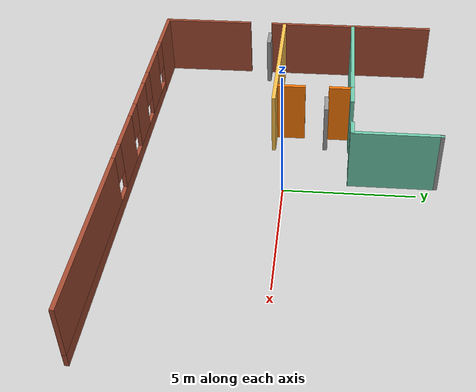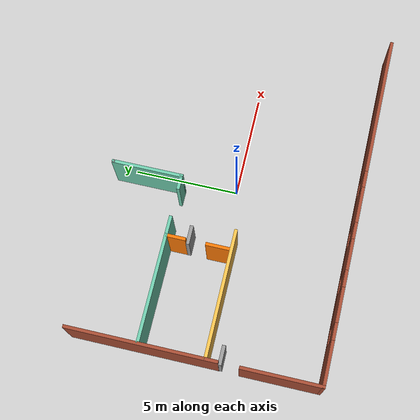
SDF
<sdf version="1.6">
 <model name="Office_Udacity">
  <link name="Door_0">
   <pose>-8.07861 -1.17997 0 0 -0 0</pose>
   <visual name="Door_0_Visual">
    <pose>0 0 1 0 -0 0</pose>
    <geometry><box><size>0.9 0.17 2</size></box></geometry>
    <material>
     <script><uri>file://media/materials/scripts/gazebo.material</uri><name>Gazebo/Grey</name></script>
     <shader type="pixel"/>
    </material>
   </visual>
   <collision name="Door_0_Collision">
    <pose>0 0 1 0 -0 0</pose>
    <geometry><box><size>0.9 0.17 2</size></box></geometry>
    <surface>
     <friction>
      <ode><mu>1</mu><mu2>1</mu2><fdir1>0 0 0</fdir1><slip1>0</slip1><slip2>0</slip2></ode>
      <torsional>
       <coefficient>1</coefficient>
       <patch_radius>0</patch_radius>
       <surface_radius>0</surface_radius>
       <use_patch_radius>1</use_patch_radius>
       <ode><slip>0</slip></ode>
      </torsional>
     </friction>
     <bounce><restitution_coefficient>0</restitution_coefficient><threshold>1e+06</threshold></bounce>
     <contact>
      <collide_without_contact>0</collide_without_contact>
      <collide_without_contact_bitmask>1</collide_without_contact_bitmask>
      <collide_bitmask>1</collide_bitmask>
      <ode>
       <soft_cfm>0</soft_cfm>
       <soft_erp>0.2</soft_erp>
       <kp>1e+13</kp>
       <kd>1</kd>
       <max_vel>0.01</max_vel>
       <min_depth>0</min_depth>
      </ode>
      <bullet>
       <split_impulse>1</split_impulse>
       <split_impulse_penetration_threshold>-0.01</split_impulse_penetration_threshold>
       <soft_cfm>0</soft_cfm>
       <soft_erp>0.2</soft_erp>
       <kp>1e+13</kp>
       <kd>1</kd>
      </bullet>
     </contact>
    </surface>
   </collision>
  </link>
  <link name="Door_1">
   <pose>-3.06619 1.513 0 0 -0 0.01009</pose>
   <visual name="Door_1_Visual">
    <pose>0 0 1 0 -0 0</pose>
    <geometry><box><size>0.9 0.17 2</size></box></geometry>
    <material>
     <script><uri>file://media/materials/scripts/gazebo.material</uri><name>Gazebo/Grey</name></script>
     <shader type="pixel"/>
    </material>
   </visual>
   <collision name="Door_1_Collision">
    <pose>0 0 1 0 -0 0</pose>
    <geometry><box><size>0.9 0.17 2</size></box></geometry>
    <surface>
     <friction>
      <ode><mu>1</mu><mu2>1</mu2><fdir1>0 0 0</fdir1><slip1>0</slip1><slip2>0</slip2></ode>
      <torsional>
       <coefficient>1</coefficient>
       <patch_radius>0</patch_radius>
       <surface_radius>0</surface_radius>
       <use_patch_radius>1</use_patch_radius>
       <ode><slip>0</slip></ode>
      </torsional>
     </friction>
     <bounce><restitution_coefficient>0</restitution_coefficient><threshold>1e+06</threshold></bounce>
     <contact>
      <collide_without_contact>0</collide_without_contact>
      <collide_without_contact_bitmask>1</collide_without_contact_bitmask>
      <collide_bitmask>1</collide_bitmask>
      <ode>
       <soft_cfm>0</soft_cfm>
       <soft_erp>0.2</soft_erp>
       <kp>1e+13</kp>
       <kd>1</kd>
       <max_vel>0.01</max_vel>
       <min_depth>0</min_depth>
      </ode>
      <bullet>
       <split_impulse>1</split_impulse>
       <split_impulse_penetration_threshold>-0.01</split_impulse_penetration_threshold>
       <soft_cfm>0</soft_cfm>
       <soft_erp>0.2</soft_erp>
       <kp>1e+13</kp>
       <kd>1</kd>
      </bullet>
     </contact>
    </surface>
   </collision>
  </link>
  <link name="Wall_23">
   <pose>-5.4726 -0.539 0 0 -0 0</pose>
   <visual name="Wall_23_Visual">
    <pose>0 0 1.25 0 -0 0</pose>
    <geometry><box><size>6 0.15 2.5</size></box></geometry>
    <material>
     <script><uri>file://media/materials/scripts/gazebo.material</uri><name>Gazebo/Grey</name></script>
     <ambient>1 0.764706 0.305882 1</ambient>
     <shader type="pixel"/>
    </material>
    <meta><layer>0</layer></meta>
   </visual>
   <collision name="Wall_23_Collision">
    <pose>0 0 1.25 0 -0 0</pose>
    <geometry><box><size>6 0.15 2.5</size></box></geometry>
    <surface>
     <friction>
      <ode><mu>1</mu><mu2>1</mu2><fdir1>0 0 0</fdir1><slip1>0</slip1><slip2>0</slip2></ode>
      <torsional>
       <coefficient>1</coefficient>
       <patch_radius>0</patch_radius>
       <surface_radius>0</surface_radius>
       <use_patch_radius>1</use_patch_radius>
       <ode><slip>0</slip></ode>
      </torsional>
     </friction>
     <bounce><restitution_coefficient>0</restitution_coefficient><threshold>1e+06</threshold></bounce>
     <contact>
      <collide_without_contact>0</collide_without_contact>
      <collide_without_contact_bitmask>1</collide_without_contact_bitmask>
      <collide_bitmask>1</collide_bitmask>
      <ode>
       <soft_cfm>0</soft_cfm>
       <soft_erp>0.2</soft_erp>
       <kp>1e+13</kp>
       <kd>1</kd>
       <max_vel>0.01</max_vel>
       <min_depth>0</min_depth>
      </ode>
      <bullet>
       <split_impulse>1</split_impulse>
       <split_impulse_penetration_threshold>-0.01</split_impulse_penetration_threshold>
       <soft_cfm>0</soft_cfm>
       <soft_erp>0.2</soft_erp>
       <kp>1e+13</kp>
       <kd>1</kd>
      </bullet>
     </contact>
    </surface>
   </collision>
  </link>
  <link name="Wall_25">
   <pose>-3.43548 0.030226 0 0 -0 1.5708</pose>
   <visual name="Wall_25_Visual">
    <pose>0 0 1.25 0 -0 0</pose>
    <geometry><box><size>1.25 0.15 2.5</size></box></geometry>
    <material>
     <script><uri>file://media/materials/scripts/gazebo.material</uri><name>Gazebo/Grey</name></script>
     <ambient>0.996078 0.47451 0.0196078 1</ambient>
     <shader type="pixel"/>
    </material>
    <meta><layer>0</layer></meta>
   </visual>
   <collision name="Wall_25_Collision">
    <pose>0 0 1.25 0 -0 0</pose>
    <geometry><box><size>1.25 0.15 2.5</size></box></geometry>
    <surface>
     <friction>
      <ode><mu>1</mu><mu2>1</mu2><fdir1>0 0 0</fdir1><slip1>0</slip1><slip2>0</slip2></ode>
      <torsional>
       <coefficient>1</coefficient>
       <patch_radius>0</patch_radius>
       <surface_radius>0</surface_radius>
       <use_patch_radius>1</use_patch_radius>
       <ode><slip>0</slip></ode>
      </torsional>
     </friction>
     <bounce><restitution_coefficient>0</restitution_coefficient><threshold>1e+06</threshold></bounce>
     <contact>
      <collide_without_contact>0</collide_without_contact>
      <collide_without_contact_bitmask>1</collide_without_contact_bitmask>
      <collide_bitmask>1</collide_bitmask>
      <ode>
       <soft_cfm>0</soft_cfm>
       <soft_erp>0.2</soft_erp>
       <kp>1e+13</kp>
       <kd>1</kd>
       <max_vel>0.01</max_vel>
       <min_depth>0</min_depth>
      </ode>
      <bullet>
       <split_impulse>1</split_impulse>
       <split_impulse_penetration_threshold>-0.01</split_impulse_penetration_threshold>
       <soft_cfm>0</soft_cfm>
       <soft_erp>0.2</soft_erp>
       <kp>1e+13</kp>
       <kd>1</kd>
      </bullet>
     </contact>
    </surface>
   </collision>
  </link>
  <link name="Wall_27">
   <pose>-3.43554 2.07794 0 0 -0 1.57094</pose>
   <visual name="Wall_27_Visual">
    <pose>0 0 1.25 0 -0 0</pose>
    <geometry><box><size>1 0.15 2.5</size></box></geometry>
    <material>
     <script><uri>file://media/materials/scripts/gazebo.material</uri><name>Gazebo/Grey</name></script>
     <ambient>0.996078 0.47451 0.0196078 1</ambient>
     <shader type="pixel"/>
    </material>
    <meta><layer>0</layer></meta>
   </visual>
   <collision name="Wall_27_Collision">
    <pose>0 0 1.25 0 -0 0</pose>
    <geometry><box><size>1 0.15 2.5</size></box></geometry>
    <surface>
     <friction>
      <ode><mu>1</mu><mu2>1</mu2><fdir1>0 0 0</fdir1><slip1>0</slip1><slip2>0</slip2></ode>
      <torsional>
       <coefficient>1</coefficient>
       <patch_radius>0</patch_radius>
       <surface_radius>0</surface_radius>
       <use_patch_radius>1</use_patch_radius>
       <ode><slip>0</slip></ode>
      </torsional>
     </friction>
     <bounce><restitution_coefficient>0</restitution_coefficient><threshold>1e+06</threshold></bounce>
     <contact>
      <collide_without_contact>0</collide_without_contact>
      <collide_without_contact_bitmask>1</collide_without_contact_bitmask>
      <collide_bitmask>1</collide_bitmask>
      <ode>
       <soft_cfm>0</soft_cfm>
       <soft_erp>0.2</soft_erp>
       <kp>1e+13</kp>
       <kd>1</kd>
       <max_vel>0.01</max_vel>
       <min_depth>0</min_depth>
      </ode>
      <bullet>
       <split_impulse>1</split_impulse>
       <split_impulse_penetration_threshold>-0.01</split_impulse_penetration_threshold>
       <soft_cfm>0</soft_cfm>
       <soft_erp>0.2</soft_erp>
       <kp>1e+13</kp>
       <kd>1</kd>
      </bullet>
     </contact>
    </surface>
   </collision>
  </link>
  <link name="Wall_28">
   <pose>-3.01054 2.50294 0 0 0 -0.000132</pose>
   <visual name="Wall_28_Visual">
    <pose>0 0 1.25 0 -0 0</pose>
    <geometry><box><size>1 0.15 2.5</size></box></geometry>
    <material>
     <script><uri>file://media/materials/scripts/gazebo.material</uri><name>Gazebo/Grey</name></script>
     <ambient>0.435294 0.796078 0.67451 1</ambient>
     <shader type="pixel"/>
    </material>
    <meta><layer>0</layer></meta>
   </visual>
   <collision name="Wall_28_Collision">
    <pose>0 0 1.25 0 -0 0</pose>
    <geometry><box><size>1 0.15 2.5</size></box></geometry>
    <surface>
     <friction>
      <ode><mu>1</mu><mu2>1</mu2><fdir1>0 0 0</fdir1><slip1>0</slip1><slip2>0</slip2></ode>
      <torsional>
       <coefficient>1</coefficient>
       <patch_radius>0</patch_radius>
       <surface_radius>0</surface_radius>
       <use_patch_radius>1</use_patch_radius>
       <ode><slip>0</slip></ode>
      </torsional>
     </friction>
     <bounce><restitution_coefficient>0</restitution_coefficient><threshold>1e+06</threshold></bounce>
     <contact>
      <collide_without_contact>0</collide_without_contact>
      <collide_without_contact_bitmask>1</collide_without_contact_bitmask>
      <collide_bitmask>1</collide_bitmask>
      <ode>
       <soft_cfm>0</soft_cfm>
       <soft_erp>0.2</soft_erp>
       <kp>1e+13</kp>
       <kd>1</kd>
       <max_vel>0.01</max_vel>
       <min_depth>0</min_depth>
      </ode>
      <bullet>
       <split_impulse>1</split_impulse>
       <split_impulse_penetration_threshold>-0.01</split_impulse_penetration_threshold>
       <soft_cfm>0</soft_cfm>
       <soft_erp>0.2</soft_erp>
       <kp>1e+13</kp>
       <kd>1</kd>
      </bullet>
     </contact>
    </surface>
   </collision>
  </link>
  <link name="Wall_30">
   <pose>-0.821601 2.507 0 0 -0 0</pose>
   <visual name="Wall_30_Visual">
    <pose>0 0 1.25 0 -0 0</pose>
    <geometry><box><size>0.75 0.15 2.5</size></box></geometry>
    <material>
     <script><uri>file://media/materials/scripts/gazebo.material</uri><name>Gazebo/Grey</name></script>
     <ambient>0.435294 0.796078 0.67451 1</ambient>
     <shader type="pixel"/>
    </material>
    <meta><layer>0</layer></meta>
   </visual>
   <collision name="Wall_30_Collision">
    <pose>0 0 1.25 0 -0 0</pose>
    <geometry><box><size>0.75 0.15 2.5</size></box></geometry>
    <surface>
     <friction>
      <ode><mu>1</mu><mu2>1</mu2><fdir1>0 0 0</fdir1><slip1>0</slip1><slip2>0</slip2></ode>
      <torsional>
       <coefficient>1</coefficient>
       <patch_radius>0</patch_radius>
       <surface_radius>0</surface_radius>
       <use_patch_radius>1</use_patch_radius>
       <ode><slip>0</slip></ode>
      </torsional>
     </friction>
     <bounce><restitution_coefficient>0</restitution_coefficient><threshold>1e+06</threshold></bounce>
     <contact>
      <collide_without_contact>0</collide_without_contact>
      <collide_without_contact_bitmask>1</collide_without_contact_bitmask>
      <collide_bitmask>1</collide_bitmask>
      <ode>
       <soft_cfm>0</soft_cfm>
       <soft_erp>0.2</soft_erp>
       <kp>1e+13</kp>
       <kd>1</kd>
       <max_vel>0.01</max_vel>
       <min_depth>0</min_depth>
      </ode>
      <bullet>
       <split_impulse>1</split_impulse>
       <split_impulse_penetration_threshold>-0.01</split_impulse_penetration_threshold>
       <soft_cfm>0</soft_cfm>
       <soft_erp>0.2</soft_erp>
       <kp>1e+13</kp>
       <kd>1</kd>
      </bullet>
     </contact>
    </surface>
   </collision>
  </link>
  <link name="Wall_31">
   <pose>-0.521601 4.132 0 0 -0 1.5708</pose>
   <visual name="Wall_31_Visual">
    <pose>0 0 1.25 0 -0 0</pose>
    <geometry><box><size>3.4 0.15 2.5</size></box></geometry>
    <material>
     <script><uri>file://media/materials/scripts/gazebo.material</uri><name>Gazebo/Grey</name></script>
     <ambient>0.435294 0.796078 0.67451 1</ambient>
     <shader type="pixel"/>
    </material>
    <meta><layer>0</layer></meta>
   </visual>
   <collision name="Wall_31_Collision">
    <pose>0 0 1.25 0 -0 0</pose>
    <geometry><box><size>3.4 0.15 2.5</size></box></geometry>
    <surface>
     <friction>
      <ode><mu>1</mu><mu2>1</mu2><fdir1>0 0 0</fdir1><slip1>0</slip1><slip2>0</slip2></ode>
      <torsional>
       <coefficient>1</coefficient>
       <patch_radius>0</patch_radius>
       <surface_radius>0</surface_radius>
       <use_patch_radius>1</use_patch_radius>
       <ode><slip>0</slip></ode>
      </torsional>
     </friction>
     <bounce><restitution_coefficient>0</restitution_coefficient><threshold>1e+06</threshold></bounce>
     <contact>
      <collide_without_contact>0</collide_without_contact>
      <collide_without_contact_bitmask>1</collide_without_contact_bitmask>
      <collide_bitmask>1</collide_bitmask>
      <ode>
       <soft_cfm>0</soft_cfm>
       <soft_erp>0.2</soft_erp>
       <kp>1e+13</kp>
       <kd>1</kd>
       <max_vel>0.01</max_vel>
       <min_depth>0</min_depth>
      </ode>
      <bullet>
       <split_impulse>1</split_impulse>
       <split_impulse_penetration_threshold>-0.01</split_impulse_penetration_threshold>
       <soft_cfm>0</soft_cfm>
       <soft_erp>0.2</soft_erp>
       <kp>1e+13</kp>
       <kd>1</kd>
      </bullet>
     </contact>
    </surface>
   </collision>
  </link>
  <link name="Wall_32">
   <pose>-0.521601 5.757 0 0 -0 0</pose>
   <visual name="Wall_32_Visual">
    <pose>0 0 1.25 0 -0 0</pose>
    <geometry><box><size>0.15 0.15 2.5</size></box></geometry>
    <material>
     <script><uri>file://media/materials/scripts/gazebo.material</uri><name>Gazebo/Grey</name></script>
     <ambient>1 1 1 1</ambient>
     <shader type="pixel"/>
    </material>
    <meta><layer>0</layer></meta>
   </visual>
   <collision name="Wall_32_Collision">
    <pose>0 0 1.25 0 -0 0</pose>
    <geometry><box><size>0.15 0.15 2.5</size></box></geometry>
    <surface>
     <friction>
      <ode><mu>1</mu><mu2>1</mu2><fdir1>0 0 0</fdir1><slip1>0</slip1><slip2>0</slip2></ode>
      <torsional>
       <coefficient>1</coefficient>
       <patch_radius>0</patch_radius>
       <surface_radius>0</surface_radius>
       <use_patch_radius>1</use_patch_radius>
       <ode><slip>0</slip></ode>
      </torsional>
     </friction>
     <bounce><restitution_coefficient>0</restitution_coefficient><threshold>1e+06</threshold></bounce>
     <contact>
      <collide_without_contact>0</collide_without_contact>
      <collide_without_contact_bitmask>1</collide_without_contact_bitmask>
      <collide_bitmask>1</collide_bitmask>
      <ode>
       <soft_cfm>0</soft_cfm>
       <soft_erp>0.2</soft_erp>
       <kp>1e+13</kp>
       <kd>1</kd>
       <max_vel>0.01</max_vel>
       <min_depth>0</min_depth>
      </ode>
      <bullet>
       <split_impulse>1</split_impulse>
       <split_impulse_penetration_threshold>-0.01</split_impulse_penetration_threshold>
       <soft_cfm>0</soft_cfm>
       <soft_erp>0.2</soft_erp>
       <kp>1e+13</kp>
       <kd>1</kd>
      </bullet>
     </contact>
    </surface>
   </collision>
  </link>
  <link name="Wall_34">
   <pose>-5.9106 2.503 0 0 -0 3.14159</pose>
   <visual name="Wall_34_Visual">
    <pose>0 0 1.25 0 -0 0</pose>
    <geometry><box><size>5.1 0.15 2.5</size></box></geometry>
    <material>
     <script><uri>file://media/materials/scripts/gazebo.material</uri><name>Gazebo/Grey</name></script>
     <ambient>0.435294 0.796078 0.67451 1</ambient>
     <shader type="pixel"/>
    </material>
    <meta><layer>0</layer></meta>
   </visual>
   <collision name="Wall_34_Collision">
    <pose>0 0 1.25 0 -0 0</pose>
    <geometry><box><size>5.1 0.15 2.5</size></box></geometry>
    <surface>
     <friction>
      <ode><mu>1</mu><mu2>1</mu2><fdir1>0 0 0</fdir1><slip1>0</slip1><slip2>0</slip2></ode>
      <torsional>
       <coefficient>1</coefficient>
       <patch_radius>0</patch_radius>
       <surface_radius>0</surface_radius>
       <use_patch_radius>1</use_patch_radius>
       <ode><slip>0</slip></ode>
      </torsional>
     </friction>
     <bounce><restitution_coefficient>0</restitution_coefficient><threshold>1e+06</threshold></bounce>
     <contact>
      <collide_without_contact>0</collide_without_contact>
      <collide_without_contact_bitmask>1</collide_without_contact_bitmask>
      <collide_bitmask>1</collide_bitmask>
      <ode>
       <soft_cfm>0</soft_cfm>
       <soft_erp>0.2</soft_erp>
       <kp>1e+13</kp>
       <kd>1</kd>
       <max_vel>0.01</max_vel>
       <min_depth>0</min_depth>
      </ode>
      <bullet>
       <split_impulse>1</split_impulse>
       <split_impulse_penetration_threshold>-0.01</split_impulse_penetration_threshold>
       <soft_cfm>0</soft_cfm>
       <soft_erp>0.2</soft_erp>
       <kp>1e+13</kp>
       <kd>1</kd>
      </bullet>
     </contact>
    </surface>
   </collision>
  </link>
  <link name="Wall_5">
   <pose>-8.4686 2.375 0 0 0 -1.5708</pose>
   <visual name="Wall_5_Visual">
    <pose>0 0 1.25 0 -0 0</pose>
    <geometry><box><size>7 0.15 2.5</size></box></geometry>
    <material>
     <script><uri>file://media/materials/scripts/gazebo.material</uri><name>Gazebo/Bricks</name></script>
     <ambient>1 1 1 1</ambient>
     <shader type="pixel"/>
    </material>
    <meta><layer>0</layer></meta>
   </visual>
   <collision name="Wall_5_Collision">
    <pose>0 0 1.25 0 -0 0</pose>
    <geometry><box><size>7 0.15 2.5</size></box></geometry>
    <surface>
     <friction>
      <ode><mu>1</mu><mu2>1</mu2><fdir1>0 0 0</fdir1><slip1>0</slip1><slip2>0</slip2></ode>
      <torsional>
       <coefficient>1</coefficient>
       <patch_radius>0</patch_radius>
       <surface_radius>0</surface_radius>
       <use_patch_radius>1</use_patch_radius>
       <ode><slip>0</slip></ode>
      </torsional>
     </friction>
     <bounce><restitution_coefficient>0</restitution_coefficient><threshold>1e+06</threshold></bounce>
     <contact>
      <collide_without_contact>0</collide_without_contact>
      <collide_without_contact_bitmask>1</collide_without_contact_bitmask>
      <collide_bitmask>1</collide_bitmask>
      <ode>
       <soft_cfm>0</soft_cfm>
       <soft_erp>0.2</soft_erp>
       <kp>1e+13</kp>
       <kd>1</kd>
       <max_vel>0.01</max_vel>
       <min_depth>0</min_depth>
      </ode>
      <bullet>
       <split_impulse>1</split_impulse>
       <split_impulse_penetration_threshold>-0.01</split_impulse_penetration_threshold>
       <soft_cfm>0</soft_cfm>
       <soft_erp>0.2</soft_erp>
       <kp>1e+13</kp>
       <kd>1</kd>
      </bullet>
     </contact>
    </surface>
   </collision>
  </link>
  <link name="Wall_7">
   <pose>-8.4866 -3.96 0 0 0 -1.5708</pose>
   <visual name="Wall_7_Visual">
    <pose>0 0 1.25 0 -0 0</pose>
    <geometry><box><size>3.8 0.15 2.5</size></box></geometry>
    <material>
     <script><uri>file://media/materials/scripts/gazebo.material</uri><name>Gazebo/Bricks</name></script>
     <ambient>1 1 1 1</ambient>
     <shader type="pixel"/>
    </material>
    <meta><layer>0</layer></meta>
   </visual>
   <collision name="Wall_7_Collision">
    <pose>0 0 1.25 0 -0 0</pose>
    <geometry><box><size>3.8 0.15 2.5</size></box></geometry>
    <surface>
     <friction>
      <ode><mu>1</mu><mu2>1</mu2><fdir1>0 0 0</fdir1><slip1>0</slip1><slip2>0</slip2></ode>
      <torsional>
       <coefficient>1</coefficient>
       <patch_radius>0</patch_radius>
       <surface_radius>0</surface_radius>
       <use_patch_radius>1</use_patch_radius>
       <ode><slip>0</slip></ode>
      </torsional>
     </friction>
     <bounce><restitution_coefficient>0</restitution_coefficient><threshold>1e+06</threshold></bounce>
     <contact>
      <collide_without_contact>0</collide_without_contact>
      <collide_without_contact_bitmask>1</collide_without_contact_bitmask>
      <collide_bitmask>1</collide_bitmask>
      <ode>
       <soft_cfm>0</soft_cfm>
       <soft_erp>0.2</soft_erp>
       <kp>1e+13</kp>
       <kd>1</kd>
       <max_vel>0.01</max_vel>
       <min_depth>0</min_depth>
      </ode>
      <bullet>
       <split_impulse>1</split_impulse>
       <split_impulse_penetration_threshold>-0.01</split_impulse_penetration_threshold>
       <soft_cfm>0</soft_cfm>
       <soft_erp>0.2</soft_erp>
       <kp>1e+13</kp>
       <kd>1</kd>
      </bullet>
     </contact>
    </surface>
   </collision>
  </link>
  <link name="Wall_9">
   <pose>-0.061602 -5.785 0 0 -0 0</pose>
   <visual name="Wall_9_Visual_0">
    <pose>-7.43426 0 1.25 0 -0 0</pose>
    <geometry><box><size>2.13149 0.15 2.5</size></box></geometry>
    <material>
     <script><uri>file://media/materials/scripts/gazebo.material</uri><name>Gazebo/Bricks</name></script>
     <ambient>1 1 1 1</ambient>
     <shader type="pixel"/>
    </material>
    <meta><layer>0</layer></meta>
   </visual>
   <visual name="Wall_9_Visual_1">
    <pose>1.06574 0 0.25 0 -0 0</pose>
    <geometry><box><size>14.8685 0.15 0.5</size></box></geometry>
    <material>
     <script><uri>file://media/materials/scripts/gazebo.material</uri><name>Gazebo/Bricks</name></script>
     <ambient>1 1 1 1</ambient>
     <shader type="pixel"/>
    </material>
    <meta><layer>0</layer></meta>
   </visual>
   <visual name="Wall_9_Visual_2">
    <pose>-4.75244 0 1.5 0 -0 0</pose>
    <geometry><box><size>1.63215 0.15 2</size></box></geometry>
    <material>
     <script><uri>file://media/materials/scripts/gazebo.material</uri><name>Gazebo/Bricks</name></script>
     <ambient>1 1 1 1</ambient>
     <shader type="pixel"/>
    </material>
    <meta><layer>0</layer></meta>
   </visual>
   <visual name="Wall_9_Visual_3">
    <pose>-2.39874 0 1.5 0 -0 0</pose>
    <geometry><box><size>1.47524 0.15 2</size></box></geometry>
    <material>
     <script><uri>file://media/materials/scripts/gazebo.material</uri><name>Gazebo/Bricks</name></script>
     <ambient>1 1 1 1</ambient>
     <shader type="pixel"/>
    </material>
    <meta><layer>0</layer></meta>
   </visual>
   <visual name="Wall_9_Visual_4">
    <pose>0.007255 0 1.5 0 -0 0</pose>
    <geometry><box><size>1.73676 0.15 2</size></box></geometry>
    <material>
     <script><uri>file://media/materials/scripts/gazebo.material</uri><name>Gazebo/Bricks</name></script>
     <ambient>1 1 1 1</ambient>
     <shader type="pixel"/>
    </material>
    <meta><layer>0</layer></meta>
   </visual>
   <visual name="Wall_9_Visual_5">
    <pose>5.08782 0 1.5 0 -0 0</pose>
    <geometry><box><size>6.82437 0.15 2</size></box></geometry>
    <material>
     <script><uri>file://media/materials/scripts/gazebo.material</uri><name>Gazebo/Bricks</name></script>
     <ambient>1 1 1 1</ambient>
     <shader type="pixel"/>
    </material>
    <meta><layer>0</layer></meta>
   </visual>
   <visual name="Wall_9_Visual_6">
    <pose>-5.96851 0 1.9 0 -0 0</pose>
    <geometry><box><size>0.8 0.15 1.2</size></box></geometry>
    <material>
     <script><uri>file://media/materials/scripts/gazebo.material</uri><name>Gazebo/Bricks</name></script>
     <ambient>1 1 1 1</ambient>
     <shader type="pixel"/>
    </material>
    <meta><layer>0</layer></meta>
   </visual>
   <visual name="Wall_9_Visual_7">
    <pose>-3.53636 0 1.9 0 -0 0</pose>
    <geometry><box><size>0.8 0.15 1.2</size></box></geometry>
    <material>
     <script><uri>file://media/materials/scripts/gazebo.material</uri><name>Gazebo/Bricks</name></script>
     <ambient>1 1 1 1</ambient>
     <shader type="pixel"/>
    </material>
    <meta><layer>0</layer></meta>
   </visual>
   <visual name="Wall_9_Visual_8">
    <pose>-1.26112 0 1.9 0 -0 0</pose>
    <geometry><box><size>0.8 0.15 1.2</size></box></geometry>
    <material>
     <script><uri>file://media/materials/scripts/gazebo.material</uri><name>Gazebo/Bricks</name></script>
     <ambient>1 1 1 1</ambient>
     <shader type="pixel"/>
    </material>
    <meta><layer>0</layer></meta>
   </visual>
   <visual name="Wall_9_Visual_9">
    <pose>1.27563 0 1.9 0 -0 0</pose>
    <geometry><box><size>0.8 0.15 1.2</size></box></geometry>
    <material>
     <script><uri>file://media/materials/scripts/gazebo.material</uri><name>Gazebo/Bricks</name></script>
     <ambient>1 1 1 1</ambient>
     <shader type="pixel"/>
    </material>
    <meta><layer>0</layer></meta>
   </visual>
   <collision name="Wall_9_Collision_0">
    <pose>-7.43426 0 1.25 0 -0 0</pose>
    <geometry><box><size>2.13149 0.15 2.5</size></box></geometry>
    <surface>
     <friction>
      <ode><mu>1</mu><mu2>1</mu2><fdir1>0 0 0</fdir1><slip1>0</slip1><slip2>0</slip2></ode>
      <torsional>
       <coefficient>1</coefficient>
       <patch_radius>0</patch_radius>
       <surface_radius>0</surface_radius>
       <use_patch_radius>1</use_patch_radius>
       <ode><slip>0</slip></ode>
      </torsional>
     </friction>
     <bounce><restitution_coefficient>0</restitution_coefficient><threshold>1e+06</threshold></bounce>
     <contact>
      <collide_without_contact>0</collide_without_contact>
      <collide_without_contact_bitmask>1</collide_without_contact_bitmask>
      <collide_bitmask>1</collide_bitmask>
      <ode>
       <soft_cfm>0</soft_cfm>
       <soft_erp>0.2</soft_erp>
       <kp>1e+13</kp>
       <kd>1</kd>
       <max_vel>0.01</max_vel>
       <min_depth>0</min_depth>
      </ode>
      <bullet>
       <split_impulse>1</split_impulse>
       <split_impulse_penetration_threshold>-0.01</split_impulse_penetration_threshold>
       <soft_cfm>0</soft_cfm>
       <soft_erp>0.2</soft_erp>
       <kp>1e+13</kp>
       <kd>1</kd>
      </bullet>
     </contact>
    </surface>
   </collision>
   <collision name="Wall_9_Collision_1">
    <pose>1.06574 0 0.25 0 -0 0</pose>
    <geometry><box><size>14.8685 0.15 0.5</size></box></geometry>
    <surface>
     <friction>
      <ode><mu>1</mu><mu2>1</mu2><fdir1>0 0 0</fdir1><slip1>0</slip1><slip2>0</slip2></ode>
      <torsional>
       <coefficient>1</coefficient>
       <patch_radius>0</patch_radius>
       <surface_radius>0</surface_radius>
       <use_patch_radius>1</use_patch_radius>
       <ode><slip>0</slip></ode>
      </torsional>
     </friction>
     <bounce><restitution_coefficient>0</restitution_coefficient><threshold>1e+06</threshold></bounce>
     <contact>
      <collide_without_contact>0</collide_without_contact>
      <collide_without_contact_bitmask>1</collide_without_contact_bitmask>
      <collide_bitmask>1</collide_bitmask>
      <ode>
       <soft_cfm>0</soft_cfm>
       <soft_erp>0.2</soft_erp>
       <kp>1e+13</kp>
       <kd>1</kd>
       <max_vel>0.01</max_vel>
       <min_depth>0</min_depth>
      </ode>
      <bullet>
       <split_impulse>1</split_impulse>
       <split_impulse_penetration_threshold>-0.01</split_impulse_penetration_threshold>
       <soft_cfm>0</soft_cfm>
       <soft_erp>0.2</soft_erp>
       <kp>1e+13</kp>
       <kd>1</kd>
      </bullet>
     </contact>
    </surface>
   </collision>
   <collision name="Wall_9_Collision_2">
    <pose>-4.75244 0 1.5 0 -0 0</pose>
    <geometry><box><size>1.63215 0.15 2</size></box></geometry>
    <surface>
     <friction>
      <ode><mu>1</mu><mu2>1</mu2><fdir1>0 0 0</fdir1><slip1>0</slip1><slip2>0</slip2></ode>
      <torsional>
       <coefficient>1</coefficient>
       <patch_radius>0</patch_radius>
       <surface_radius>0</surface_radius>
       <use_patch_radius>1</use_patch_radius>
       <ode><slip>0</slip></ode>
      </torsional>
     </friction>
     <bounce><restitution_coefficient>0</restitution_coefficient><threshold>1e+06</threshold></bounce>
     <contact>
      <collide_without_contact>0</collide_without_contact>
      <collide_without_contact_bitmask>1</collide_without_contact_bitmask>
      <collide_bitmask>1</collide_bitmask>
      <ode>
       <soft_cfm>0</soft_cfm>
       <soft_erp>0.2</soft_erp>
       <kp>1e+13</kp>
       <kd>1</kd>
       <max_vel>0.01</max_vel>
       <min_depth>0</min_depth>
      </ode>
      <bullet>
       <split_impulse>1</split_impulse>
       <split_impulse_penetration_threshold>-0.01</split_impulse_penetration_threshold>
       <soft_cfm>0</soft_cfm>
       <soft_erp>0.2</soft_erp>
       <kp>1e+13</kp>
       <kd>1</kd>
      </bullet>
     </contact>
    </surface>
   </collision>
   <collision name="Wall_9_Collision_3">
    <pose>-2.39874 0 1.5 0 -0 0</pose>
    <geometry><box><size>1.47524 0.15 2</size></box></geometry>
    <surface>
     <friction>
      <ode><mu>1</mu><mu2>1</mu2><fdir1>0 0 0</fdir1><slip1>0</slip1><slip2>0</slip2></ode>
      <torsional>
       <coefficient>1</coefficient>
       <patch_radius>0</patch_radius>
       <surface_radius>0</surface_radius>
       <use_patch_radius>1</use_patch_radius>
       <ode><slip>0</slip></ode>
      </torsional>
     </friction>
     <bounce><restitution_coefficient>0</restitution_coefficient><threshold>1e+06</threshold></bounce>
     <contact>
      <collide_without_contact>0</collide_without_contact>
      <collide_without_contact_bitmask>1</collide_without_contact_bitmask>
      <collide_bitmask>1</collide_bitmask>
      <ode>
       <soft_cfm>0</soft_cfm>
       <soft_erp>0.2</soft_erp>
       <kp>1e+13</kp>
       <kd>1</kd>
       <max_vel>0.01</max_vel>
       <min_depth>0</min_depth>
      </ode>
      <bullet>
       <split_impulse>1</split_impulse>
       <split_impulse_penetration_threshold>-0.01</split_impulse_penetration_threshold>
       <soft_cfm>0</soft_cfm>
       <soft_erp>0.2</soft_erp>
       <kp>1e+13</kp>
       <kd>1</kd>
      </bullet>
     </contact>
    </surface>
   </collision>
   <collision name="Wall_9_Collision_4">
    <pose>0.007255 0 1.5 0 -0 0</pose>
    <geometry><box><size>1.73676 0.15 2</size></box></geometry>
    <surface>
     <friction>
      <ode><mu>1</mu><mu2>1</mu2><fdir1>0 0 0</fdir1><slip1>0</slip1><slip2>0</slip2></ode>
      <torsional>
       <coefficient>1</coefficient>
       <patch_radius>0</patch_radius>
       <surface_radius>0</surface_radius>
       <use_patch_radius>1</use_patch_radius>
       <ode><slip>0</slip></ode>
      </torsional>
     </friction>
     <bounce><restitution_coefficient>0</restitution_coefficient><threshold>1e+06</threshold></bounce>
     <contact>
      <collide_without_contact>0</collide_without_contact>
      <collide_without_contact_bitmask>1</collide_without_contact_bitmask>
      <collide_bitmask>1</collide_bitmask>
      <ode>
       <soft_cfm>0</soft_cfm>
       <soft_erp>0.2</soft_erp>
       <kp>1e+13</kp>
       <kd>1</kd>
       <max_vel>0.01</max_vel>
       <min_depth>0</min_depth>
      </ode>
      <bullet>
       <split_impulse>1</split_impulse>
       <split_impulse_penetration_threshold>-0.01</split_impulse_penetration_threshold>
       <soft_cfm>0</soft_cfm>
       <soft_erp>0.2</soft_erp>
       <kp>1e+13</kp>
       <kd>1</kd>
      </bullet>
     </contact>
    </surface>
   </collision>
   <collision name="Wall_9_Collision_5">
    <pose>5.08782 0 1.5 0 -0 0</pose>
    <geometry><box><size>6.82437 0.15 2</size></box></geometry>
    <surface>
     <friction>
      <ode><mu>1</mu><mu2>1</mu2><fdir1>0 0 0</fdir1><slip1>0</slip1><slip2>0</slip2></ode>
      <torsional>
       <coefficient>1</coefficient>
       <patch_radius>0</patch_radius>
       <surface_radius>0</surface_radius>
       <use_patch_radius>1</use_patch_radius>
       <ode><slip>0</slip></ode>
      </torsional>
     </friction>
     <bounce><restitution_coefficient>0</restitution_coefficient><threshold>1e+06</threshold></bounce>
     <contact>
      <collide_without_contact>0</collide_without_contact>
      <collide_without_contact_bitmask>1</collide_without_contact_bitmask>
      <collide_bitmask>1</collide_bitmask>
      <ode>
       <soft_cfm>0</soft_cfm>
       <soft_erp>0.2</soft_erp>
       <kp>1e+13</kp>
       <kd>1</kd>
       <max_vel>0.01</max_vel>
       <min_depth>0</min_depth>
      </ode>
      <bullet>
       <split_impulse>1</split_impulse>
       <split_impulse_penetration_threshold>-0.01</split_impulse_penetration_threshold>
       <soft_cfm>0</soft_cfm>
       <soft_erp>0.2</soft_erp>
       <kp>1e+13</kp>
       <kd>1</kd>
      </bullet>
     </contact>
    </surface>
   </collision>
   <collision name="Wall_9_Collision_6">
    <pose>-5.96851 0 1.9 0 -0 0</pose>
    <geometry><box><size>0.8 0.15 1.2</size></box></geometry>
    <surface>
     <friction>
      <ode><mu>1</mu><mu2>1</mu2><fdir1>0 0 0</fdir1><slip1>0</slip1><slip2>0</slip2></ode>
      <torsional>
       <coefficient>1</coefficient>
       <patch_radius>0</patch_radius>
       <surface_radius>0</surface_radius>
       <use_patch_radius>1</use_patch_radius>
       <ode><slip>0</slip></ode>
      </torsional>
     </friction>
     <bounce><restitution_coefficient>0</restitution_coefficient><threshold>1e+06</threshold></bounce>
     <contact>
      <collide_without_contact>0</collide_without_contact>
      <collide_without_contact_bitmask>1</collide_without_contact_bitmask>
      <collide_bitmask>1</collide_bitmask>
      <ode>
       <soft_cfm>0</soft_cfm>
       <soft_erp>0.2</soft_erp>
       <kp>1e+13</kp>
       <kd>1</kd>
       <max_vel>0.01</max_vel>
       <min_depth>0</min_depth>
      </ode>
      <bullet>
       <split_impulse>1</split_impulse>
       <split_impulse_penetration_threshold>-0.01</split_impulse_penetration_threshold>
       <soft_cfm>0</soft_cfm>
       <soft_erp>0.2</soft_erp>
       <kp>1e+13</kp>
       <kd>1</kd>
      </bullet>
     </contact>
    </surface>
   </collision>
   <collision name="Wall_9_Collision_7">
    <pose>-3.53636 0 1.9 0 -0 0</pose>
    <geometry><box><size>0.8 0.15 1.2</size></box></geometry>
    <surface>
     <friction>
      <ode><mu>1</mu><mu2>1</mu2><fdir1>0 0 0</fdir1><slip1>0</slip1><slip2>0</slip2></ode>
      <torsional>
       <coefficient>1</coefficient>
       <patch_radius>0</patch_radius>
       <surface_radius>0</surface_radius>
       <use_patch_radius>1</use_patch_radius>
       <ode><slip>0</slip></ode>
      </torsional>
     </friction>
     <bounce><restitution_coefficient>0</restitution_coefficient><threshold>1e+06</threshold></bounce>
     <contact>
      <collide_without_contact>0</collide_without_contact>
      <collide_without_contact_bitmask>1</collide_without_contact_bitmask>
      <collide_bitmask>1</collide_bitmask>
      <ode>
       <soft_cfm>0</soft_cfm>
       <soft_erp>0.2</soft_erp>
       <kp>1e+13</kp>
       <kd>1</kd>
       <max_vel>0.01</max_vel>
       <min_depth>0</min_depth>
      </ode>
      <bullet>
       <split_impulse>1</split_impulse>
       <split_impulse_penetration_threshold>-0.01</split_impulse_penetration_threshold>
       <soft_cfm>0</soft_cfm>
       <soft_erp>0.2</soft_erp>
       <kp>1e+13</kp>
       <kd>1</kd>
      </bullet>
     </contact>
    </surface>
   </collision>
   <collision name="Wall_9_Collision_8">
    <pose>-1.26112 0 1.9 0 -0 0</pose>
    <geometry><box><size>0.8 0.15 1.2</size></box></geometry>
    <surface>
     <friction>
      <ode><mu>1</mu><mu2>1</mu2><fdir1>0 0 0</fdir1><slip1>0</slip1><slip2>0</slip2></ode>
      <torsional>
       <coefficient>1</coefficient>
       <patch_radius>0</patch_radius>
       <surface_radius>0</surface_radius>
       <use_patch_radius>1</use_patch_radius>
       <ode><slip>0</slip></ode>
      </torsional>
     </friction>
     <bounce><restitution_coefficient>0</restitution_coefficient><threshold>1e+06</threshold></bounce>
     <contact>
      <collide_without_contact>0</collide_without_contact>
      <collide_without_contact_bitmask>1</collide_without_contact_bitmask>
      <collide_bitmask>1</collide_bitmask>
      <ode>
       <soft_cfm>0</soft_cfm>
       <soft_erp>0.2</soft_erp>
       <kp>1e+13</kp>
       <kd>1</kd>
       <max_vel>0.01</max_vel>
       <min_depth>0</min_depth>
      </ode>
      <bullet>
       <split_impulse>1</split_impulse>
       <split_impulse_penetration_threshold>-0.01</split_impulse_penetration_threshold>
       <soft_cfm>0</soft_cfm>
       <soft_erp>0.2</soft_erp>
       <kp>1e+13</kp>
       <kd>1</kd>
      </bullet>
     </contact>
    </surface>
   </collision>
   <collision name="Wall_9_Collision_9">
    <pose>1.27563 0 1.9 0 -0 0</pose>
    <geometry><box><size>0.8 0.15 1.2</size></box></geometry>
    <surface>
     <friction>
      <ode><mu>1</mu><mu2>1</mu2><fdir1>0 0 0</fdir1><slip1>0</slip1><slip2>0</slip2></ode>
      <torsional>
       <coefficient>1</coefficient>
       <patch_radius>0</patch_radius>
       <surface_radius>0</surface_radius>
       <use_patch_radius>1</use_patch_radius>
       <ode><slip>0</slip></ode>
      </torsional>
     </friction>
     <bounce><restitution_coefficient>0</restitution_coefficient><threshold>1e+06</threshold></bounce>
     <contact>
      <collide_without_contact>0</collide_without_contact>
      <collide_without_contact_bitmask>1</collide_without_contact_bitmask>
      <collide_bitmask>1</collide_bitmask>
      <ode>
       <soft_cfm>0</soft_cfm>
       <soft_erp>0.2</soft_erp>
       <kp>1e+13</kp>
       <kd>1</kd>
       <max_vel>0.01</max_vel>
       <min_depth>0</min_depth>
      </ode>
      <bullet>
       <split_impulse>1</split_impulse>
       <split_impulse_penetration_threshold>-0.01</split_impulse_penetration_threshold>
       <soft_cfm>0</soft_cfm>
       <soft_erp>0.2</soft_erp>
       <kp>1e+13</kp>
       <kd>1</kd>
      </bullet>
     </contact>
    </surface>
   </collision>
  </link>
  <static>1</static>
 </model>
</sdf>
